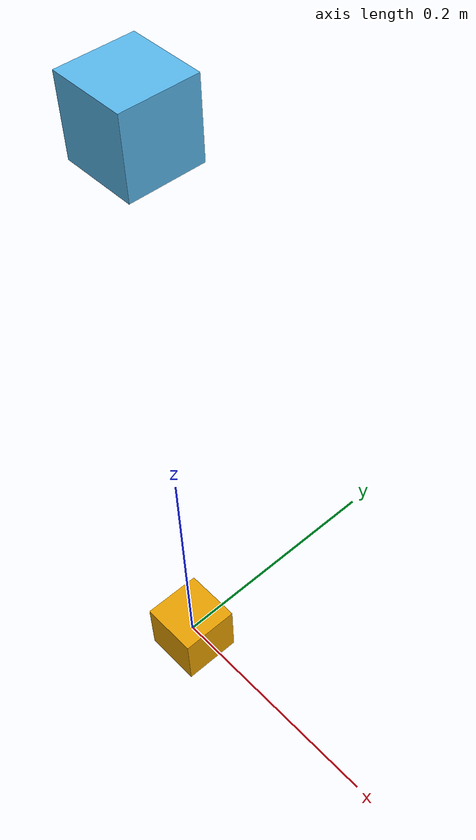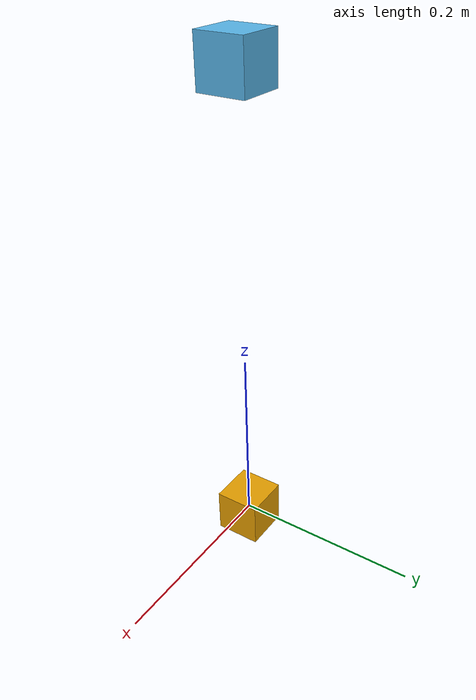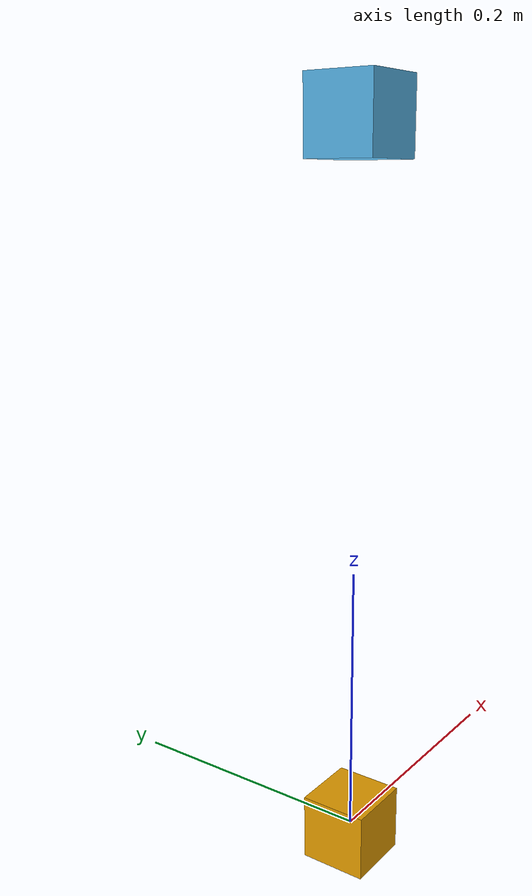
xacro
<?xml version='1.0'?>
<robot name="Mid360"
    xmlns:xacro="http://www.ros.org/wiki/xacro">

    <link name="base_link">
        <inertial>
            <mass value="0.1"/>
            <inertia>
                <ixx>0.0001</ixx>
                <ixy>0.1</ixy>
                <ixz>0.1</ixz>
                <iyy>0.0001</iyy>
                <iyz>0.1</iyz>
                <izz>0.0001</izz>
            </inertia>
        </inertial>

        <collision name="lidar_collision">
            <geometry>
                <box size="0.05 0.05 0.05"/>
            </geometry>
        </collision>

        <visual name="lidar_visual">
            <geometry>
                <box size="0.05 0.05 0.05"/>
            </geometry>
        </visual>
    </link>

    <link name="lidar_mount">
        <visual name="lidar_visual">
            <geometry>
                <box size="0.05 0.05 0.05"/>
            </geometry>
        </visual>
    </link>

    <joint name="lidar_joint" type="fixed">
        <parent link="base_link"/>
        <child link="lidar_mount"/>
        <origin xyz="0 0 0.5" rpy="0 0 0"/>
    </joint>

    <gazebo reference="lidar_mount">
        <sensor name="laser_livox" type="ray">
            <pose>0 0 0.05 0 0 0</pose>
            <visualize>True</visualize>
            <always_on>true</always_on>
            <update_rate>10</update_rate>
            <plugin filename="liblivox_laser_simulation.so" name="gazebo_ros_laser_controller">
                <ray>
                    <scan>
                        <horizontal>
                            <samples>100</samples>
                            <resolution>1</resolution>
                            <min_angle>-3.1415926535897931</min_angle>
                            <max_angle>3.1415926535897931</max_angle>
                        </horizontal>
                        <vertical>
                            <samples>50</samples>
                            <resolution>1</resolution>
                            <min_angle>-3.1415926535897931</min_angle>
                            <max_angle>3.1415926535897931</max_angle>
                        </vertical>
                    </scan>
                    <range>
                        <min>0.1</min>
                        <max>40</max>
                        <resolution>1</resolution>
                    </range>
                    <noise>
                        <type>gaussian</type>
                        <mean>0.0</mean>
                        <stddev>0.0</stddev>
                    </noise>
                </ray>
                <visualize>true</visualize>
                <samples>20000</samples>
                <downsample>1</downsample>
                <csv_file_name>mid360-real-centr.csv</csv_file_name>
                <publish_pointcloud_type>2</publish_pointcloud_type>
                <ros_topic>/livox/lidar</ros_topic>
                <frameName>lidar_mount</frameName>
            </plugin>
        </sensor>
    </gazebo>

</robot>
